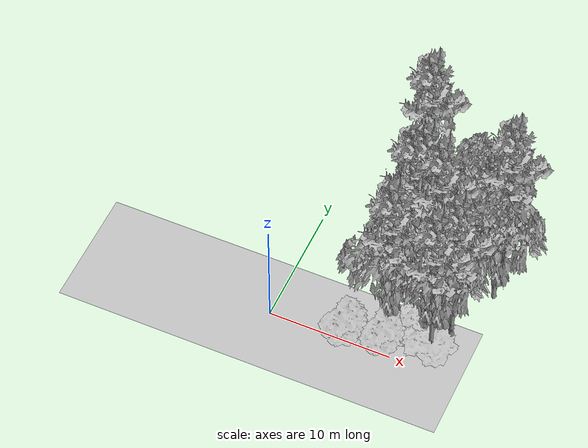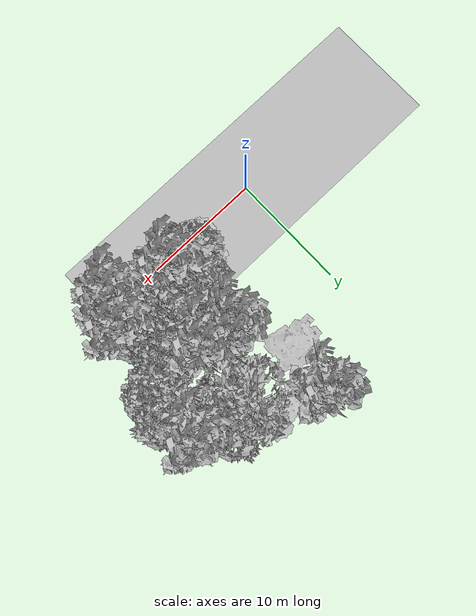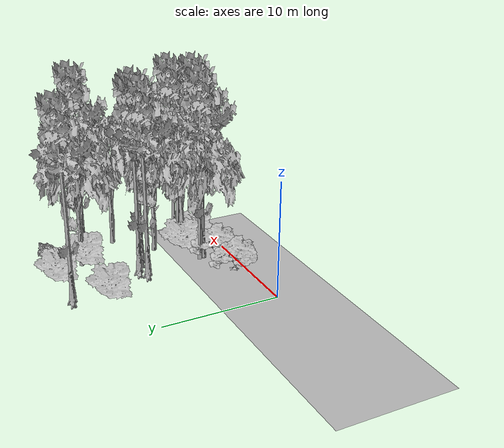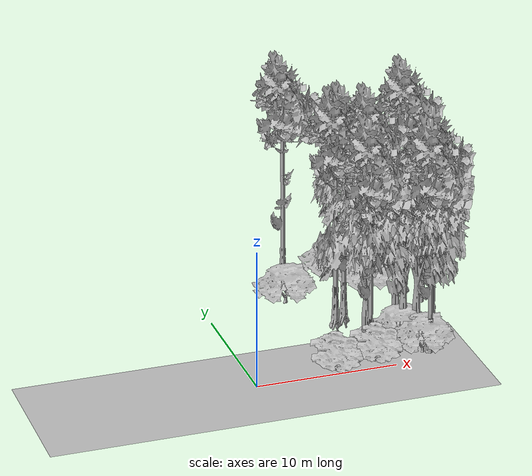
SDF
<sdf version="1.7">
 <world name="default">
  <model name="ground_plane">
   <static>1</static>
   <link name="link">
    <collision name="collision">
     <pose>-50 0 0 0 -0 0</pose>
     <geometry><plane><normal>0 0 1</normal><size>100 100</size></plane></geometry>
     <surface><contact><ode><min_depth>0.01</min_depth><max_vel>0</max_vel></ode></contact></surface>
    </collision>
    <visual name="grass">
     <cast_shadows>0</cast_shadows>
     <geometry>
      <mesh>
       <scale>0.5814285714285714 0.18142857142857144 0.1</scale>
       <uri>file://grass_plane/meshes/grass_plane.dae</uri>
      </mesh>
     </geometry>
    </visual>
   </link>
  </model>
  <model name="Tree 5">
   <static>1</static>
   <pose>10.741834737825783 7.438542057268506 0 1.57079 -0 0</pose>
   <link name="link">
    <collision name="collision">
     <geometry><mesh><scale>3.5 5 3.5</scale><uri>model://tree_9/meshes/tree_9.obj</uri></mesh></geometry>
    </collision>
    <visual name="visual">
     <geometry><mesh><scale>3.5 5 3.5</scale><uri>model://tree_9/meshes/tree_9.obj</uri></mesh></geometry>
    </visual>
   </link>
  </model>
  <model name="Tree 14">
   <static>1</static>
   <pose>12.297697152173143 11.659283858585564 0 1.57079 -0 0</pose>
   <link name="link">
    <collision name="collision">
     <geometry><mesh><scale>3 2 3</scale><uri>model://tree_3/meshes/tree_3.obj</uri></mesh></geometry>
    </collision>
    <visual name="visual">
     <geometry><mesh><scale>3 2 3</scale><uri>model://tree_3/meshes/tree_3.obj</uri></mesh></geometry>
    </visual>
   </link>
  </model>
  <model name="Tree 63">
   <static>1</static>
   <pose>11.990695205096408 5.681073173187542 0 1.57079 -0 0</pose>
   <link name="link">
    <collision name="collision">
     <geometry><mesh><scale>3.5 5 3.5</scale><uri>model://tree_2/meshes/tree_2.obj</uri></mesh></geometry>
    </collision>
    <visual name="visual">
     <geometry><mesh><scale>3.5 5 3.5</scale><uri>model://tree_2/meshes/tree_2.obj</uri></mesh></geometry>
    </visual>
   </link>
  </model>
  <model name="Tree 75">
   <static>1</static>
   <pose>8.962611509599967 2.3648524277875183 0 1.57079 -0 0</pose>
   <link name="link">
    <collision name="collision">
     <geometry><mesh><scale>3.5 5 3.5</scale><uri>model://tree_9/meshes/tree_9.obj</uri></mesh></geometry>
    </collision>
    <visual name="visual">
     <geometry><mesh><scale>3.5 5 3.5</scale><uri>model://tree_9/meshes/tree_9.obj</uri></mesh></geometry>
    </visual>
   </link>
  </model>
  <model name="Tree 142">
   <static>1</static>
   <pose>12.864700635699002 1.1374190355120746 0 1.57079 -0 0</pose>
   <link name="link">
    <collision name="collision">
     <geometry><mesh><scale>3.5 5 3.5</scale><uri>model://tree_9/meshes/tree_9.obj</uri></mesh></geometry>
    </collision>
    <visual name="visual">
     <geometry><mesh><scale>3.5 5 3.5</scale><uri>model://tree_9/meshes/tree_9.obj</uri></mesh></geometry>
    </visual>
   </link>
  </model>
  <model name="Tree 150">
   <static>1</static>
   <pose>12.421474222127117 1.291088189520611 0 1.57079 -0 0</pose>
   <link name="link">
    <collision name="collision">
     <geometry><mesh><scale>3 2 3</scale><uri>model://tree_3/meshes/tree_3.obj</uri></mesh></geometry>
    </collision>
    <visual name="visual">
     <geometry><mesh><scale>3 2 3</scale><uri>model://tree_3/meshes/tree_3.obj</uri></mesh></geometry>
    </visual>
   </link>
  </model>
  <model name="Tree 151">
   <static>1</static>
   <pose>12.530108472807719 3.0781382320884454 0 1.57079 -0 0</pose>
   <link name="link">
    <collision name="collision">
     <geometry><mesh><scale>3.5 5 3.5</scale><uri>model://tree_2/meshes/tree_2.obj</uri></mesh></geometry>
    </collision>
    <visual name="visual">
     <geometry><mesh><scale>3.5 5 3.5</scale><uri>model://tree_2/meshes/tree_2.obj</uri></mesh></geometry>
    </visual>
   </link>
  </model>
  <model name="Tree 210">
   <static>1</static>
   <pose>6.918842234171031 14.790345971682111 0 1.57079 -0 0</pose>
   <link name="link">
    <collision name="collision">
     <geometry><mesh><scale>3.5 5 3.5</scale><uri>model://tree_9/meshes/tree_9.obj</uri></mesh></geometry>
    </collision>
    <visual name="visual">
     <geometry><mesh><scale>3.5 5 3.5</scale><uri>model://tree_9/meshes/tree_9.obj</uri></mesh></geometry>
    </visual>
   </link>
  </model>
  <model name="Tree 220">
   <static>1</static>
   <pose>11.606685348303834 3.170353462703943 0 1.57079 -0 0</pose>
   <link name="link">
    <collision name="collision">
     <geometry><mesh><scale>3.5 5 3.5</scale><uri>model://tree_2/meshes/tree_2.obj</uri></mesh></geometry>
    </collision>
    <visual name="visual">
     <geometry><mesh><scale>3.5 5 3.5</scale><uri>model://tree_2/meshes/tree_2.obj</uri></mesh></geometry>
    </visual>
   </link>
  </model>
  <model name="Tree 223">
   <static>1</static>
   <pose>11.435702770001853 2.995562021681959 0 1.57079 -0 0</pose>
   <link name="link">
    <collision name="collision">
     <geometry><mesh><scale>3 2 3</scale><uri>model://tree_3/meshes/tree_3.obj</uri></mesh></geometry>
    </collision>
    <visual name="visual">
     <geometry><mesh><scale>3 2 3</scale><uri>model://tree_3/meshes/tree_3.obj</uri></mesh></geometry>
    </visual>
   </link>
  </model>
  <model name="Tree 227">
   <static>1</static>
   <pose>8.379148166993225 7.7590207620640115 0 1.57079 -0 0</pose>
   <link name="link">
    <collision name="collision">
     <geometry><mesh><scale>3.5 5 3.5</scale><uri>model://tree_9/meshes/tree_9.obj</uri></mesh></geometry>
    </collision>
    <visual name="visual">
     <geometry><mesh><scale>3.5 5 3.5</scale><uri>model://tree_9/meshes/tree_9.obj</uri></mesh></geometry>
    </visual>
   </link>
  </model>
  <model name="Tree 254">
   <static>1</static>
   <pose>8.688023603970677 2.715351373770968 0 1.57079 -0 0</pose>
   <link name="link">
    <collision name="collision">
     <geometry><mesh><scale>3.5 5 3.5</scale><uri>model://tree_2/meshes/tree_2.obj</uri></mesh></geometry>
    </collision>
    <visual name="visual">
     <geometry><mesh><scale>3.5 5 3.5</scale><uri>model://tree_2/meshes/tree_2.obj</uri></mesh></geometry>
    </visual>
   </link>
  </model>
  <model name="Tree 304">
   <static>1</static>
   <pose>9.169475989491765 8.243383077228298 0 1.57079 -0 0</pose>
   <link name="link">
    <collision name="collision">
     <geometry><mesh><scale>3.5 5 3.5</scale><uri>model://tree_9/meshes/tree_9.obj</uri></mesh></geometry>
    </collision>
    <visual name="visual">
     <geometry><mesh><scale>3.5 5 3.5</scale><uri>model://tree_9/meshes/tree_9.obj</uri></mesh></geometry>
    </visual>
   </link>
  </model>
  <model name="Tree 321">
   <static>1</static>
   <pose>12.039147593849222 12.332475892924041 0 1.57079 -0 0</pose>
   <link name="link">
    <collision name="collision">
     <geometry><mesh><scale>3.5 5 3.5</scale><uri>model://tree_2/meshes/tree_2.obj</uri></mesh></geometry>
    </collision>
    <visual name="visual">
     <geometry><mesh><scale>3.5 5 3.5</scale><uri>model://tree_2/meshes/tree_2.obj</uri></mesh></geometry>
    </visual>
   </link>
  </model>
  <model name="Tree 326">
   <static>1</static>
   <pose>14.829087575059837 11.335776074808837 0 1.57079 -0 0</pose>
   <link name="link">
    <collision name="collision">
     <geometry><mesh><scale>3.5 5 3.5</scale><uri>model://tree_9/meshes/tree_9.obj</uri></mesh></geometry>
    </collision>
    <visual name="visual">
     <geometry><mesh><scale>3.5 5 3.5</scale><uri>model://tree_9/meshes/tree_9.obj</uri></mesh></geometry>
    </visual>
   </link>
  </model>
  <model name="Tree 329">
   <static>1</static>
   <pose>10.525170635247342 14.54021786638637 0 1.57079 -0 0</pose>
   <link name="link">
    <collision name="collision">
     <geometry><mesh><scale>3 2 3</scale><uri>model://tree_3/meshes/tree_3.obj</uri></mesh></geometry>
    </collision>
    <visual name="visual">
     <geometry><mesh><scale>3 2 3</scale><uri>model://tree_3/meshes/tree_3.obj</uri></mesh></geometry>
    </visual>
   </link>
  </model>
  <model name="Tree 387">
   <static>1</static>
   <pose>6.020080667250106 11.555692958309564 0 1.57079 -0 0</pose>
   <link name="link">
    <collision name="collision">
     <geometry><mesh><scale>3 2 3</scale><uri>model://tree_3/meshes/tree_3.obj</uri></mesh></geometry>
    </collision>
    <visual name="visual">
     <geometry><mesh><scale>3 2 3</scale><uri>model://tree_3/meshes/tree_3.obj</uri></mesh></geometry>
    </visual>
   </link>
  </model>
  <model name="Tree 409">
   <static>1</static>
   <pose>5.756609017440859 0.8384686699292363 0 1.57079 -0 0</pose>
   <link name="link">
    <collision name="collision">
     <geometry><mesh><scale>4 2.5 4</scale><uri>model://tree_1/meshes/tree_1.obj</uri></mesh></geometry>
    </collision>
    <visual name="visual">
     <geometry><mesh><scale>4 2.5 4</scale><uri>model://tree_1/meshes/tree_1.obj</uri></mesh></geometry>
    </visual>
   </link>
  </model>
  <model name="Tree 439">
   <static>1</static>
   <pose>8.783491190819682 1.2632161071010728 0 1.57079 -0 0</pose>
   <link name="link">
    <collision name="collision">
     <geometry><mesh><scale>4 2.5 4</scale><uri>model://tree_1/meshes/tree_1.obj</uri></mesh></geometry>
    </collision>
    <visual name="visual">
     <geometry><mesh><scale>4 2.5 4</scale><uri>model://tree_1/meshes/tree_1.obj</uri></mesh></geometry>
    </visual>
   </link>
  </model>
  <model name="Tree 505">
   <static>1</static>
   <pose>13.764525720002652 3.0409474393384777 0 1.57079 -0 0</pose>
   <link name="link">
    <collision name="collision">
     <geometry><mesh><scale>3.5 5 3.5</scale><uri>model://tree_9/meshes/tree_9.obj</uri></mesh></geometry>
    </collision>
    <visual name="visual">
     <geometry><mesh><scale>3.5 5 3.5</scale><uri>model://tree_9/meshes/tree_9.obj</uri></mesh></geometry>
    </visual>
   </link>
  </model>
  <model name="Tree 516">
   <static>1</static>
   <pose>15.016114019890253 8.526629219851458 0 1.57079 -0 0</pose>
   <link name="link">
    <collision name="collision">
     <geometry><mesh><scale>3.5 5 3.5</scale><uri>model://tree_2/meshes/tree_2.obj</uri></mesh></geometry>
    </collision>
    <visual name="visual">
     <geometry><mesh><scale>3.5 5 3.5</scale><uri>model://tree_2/meshes/tree_2.obj</uri></mesh></geometry>
    </visual>
   </link>
  </model>
  <model name="Bush 0">
   <static>1</static>
   <pose>14.114404757470261 14.737914423576811 0 1.57079 -0 0</pose>
   <link name="link">
    <collision name="collision">
     <geometry><mesh><scale>2 2 2</scale><uri>model://bush_1/meshes/bush_1.obj</uri></mesh></geometry>
     <surface><contact><collide_without_contact>false</collide_without_contact></contact></surface>
    </collision>
    <visual name="visual">
     <geometry><mesh><scale>2 2 2</scale><uri>model://bush_1/meshes/bush_1.obj</uri></mesh></geometry>
    </visual>
   </link>
  </model>
 </world>
</sdf>
